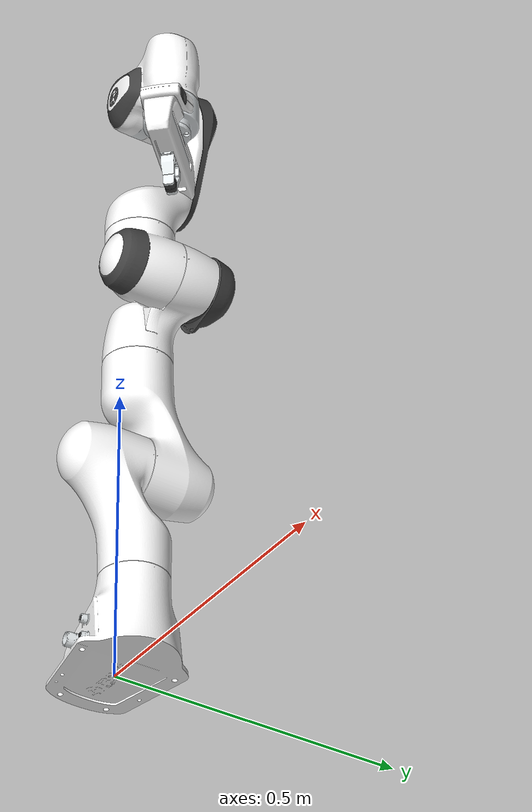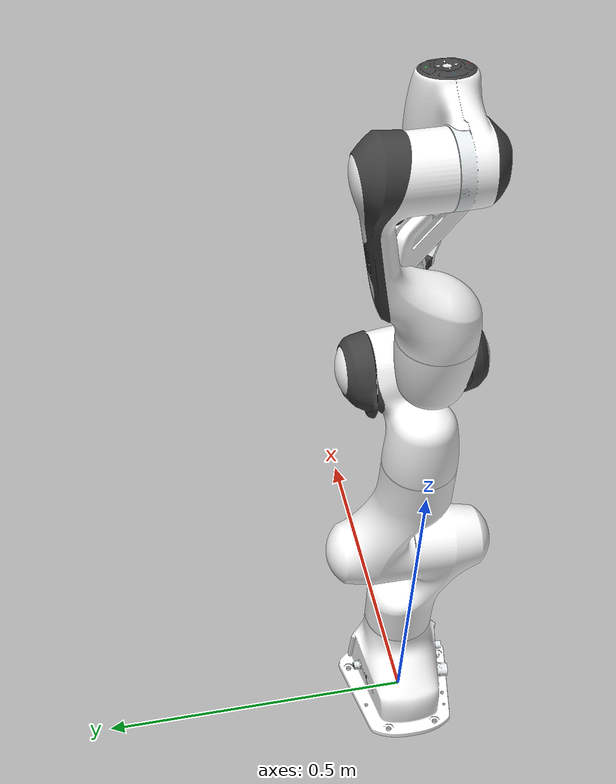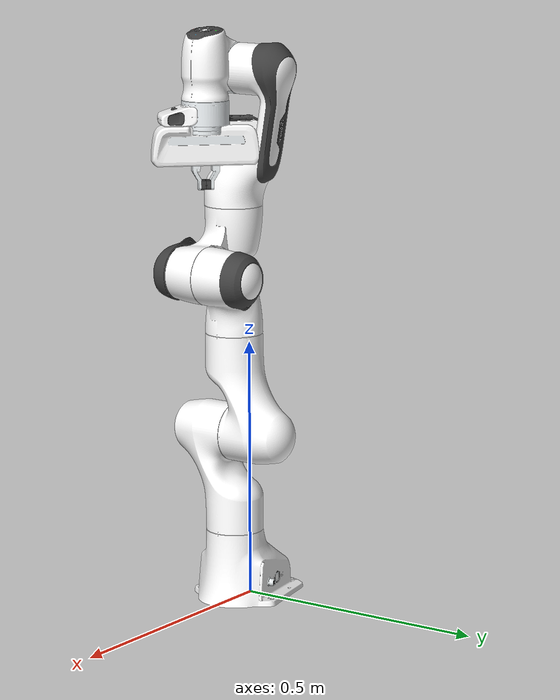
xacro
<?xml version="1.0"?>
<robot xmlns:xacro="http://www.ros.org/wiki/xacro" name="panda">

    <!-- 1. Include our newly cleaned Panda URDF -->
    <xacro:include filename="$(find my_panda_project)/urdf/clean_panda.urdf" />

    <!-- 2. Anchor the robot base to the Gazebo world so it never falls down -->
    <link name="world"/>
    <joint name="virtual_joint" type="fixed">
        <parent link="world"/>
        <child link="panda_link0"/>
        <origin xyz="0.05 0 0" rpy="0 0 0"/>
    </joint>

    <!-- 3. Define the Gazebo ros2_control hardware interface -->
    <ros2_control name="GazeboSimSystem" type="system">
        <hardware>
            <plugin>gz_ros2_control/GazeboSimSystem</plugin>
        </hardware>

        <!-- Macro to apply interfaces and specific initial positions to all joints -->
        <xacro:macro name="configure_joint" params="joint_name init_pos">
            <joint name="${joint_name}">
                <command_interface name="position"/>
                <state_interface name="position">
                    <param name="initial_value">${init_pos}</param>
                </state_interface>
                <state_interface name="velocity"/>
            </joint>
        </xacro:macro>

        <!-- Inject the safe "Ready/Home" pose joint angles -->
        <xacro:configure_joint joint_name="panda_joint1" init_pos="0.0" />
        <xacro:configure_joint joint_name="panda_joint2" init_pos="-0.785" />
        <xacro:configure_joint joint_name="panda_joint3" init_pos="0.0" />
        <xacro:configure_joint joint_name="panda_joint4" init_pos="-2.356" />
        <xacro:configure_joint joint_name="panda_joint5" init_pos="0.0" />
        <xacro:configure_joint joint_name="panda_joint6" init_pos="1.57" />
        <xacro:configure_joint joint_name="panda_joint7" init_pos="0.785" />

        <!-- The active finger gets the standard macro (with command interface) -->
        <xacro:configure_joint joint_name="panda_finger_joint1" init_pos="0.04" />

        <!-- The mimic finger ONLY gets state interfaces -->
        <joint name="panda_finger_joint2">
            <state_interface name="position">
                <param name="initial_value">0.04</param>
            </state_interface>
            <state_interface name="velocity"/>
        </joint>

    </ros2_control>

    <!-- 4. Attach the Gazebo ROS 2 Control Plugin -->
    <gazebo>
        <plugin filename="gz_ros2_control-system" name="gz_ros2_control::GazeboSimROS2ControlPlugin">
            <parameters>$(find my_panda_project)/config/ros2_controllers.yaml</parameters>
        </plugin>
    </gazebo>

</robot>

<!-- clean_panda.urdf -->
<robot name="panda">
    <link name="panda_link0">
        <visual>
            <geometry>
                <mesh filename="package://moveit_resources_panda_description/meshes/visual/link0.dae" />
            </geometry>
        </visual>
        <collision>
            <geometry>
                <mesh filename="package://moveit_resources_panda_description/meshes/collision/link0.stl" />
            </geometry>
        </collision>
    <inertial><mass value="2.0" /><origin xyz="0 0 0" rpy="0 0 0" /><inertia ixx="0.05" ixy="0" ixz="0" iyy="0.05" iyz="0" izz="0.05" /></inertial></link>
    <link name="panda_link1">
        <visual>
            <geometry>
                <mesh filename="package://moveit_resources_panda_description/meshes/visual/link1.dae" />
            </geometry>
        </visual>
        <collision>
            <geometry>
                <mesh filename="package://moveit_resources_panda_description/meshes/collision/link1.stl" />
            </geometry>
        </collision>
    <inertial><mass value="2.0" /><origin xyz="0 0 0" rpy="0 0 0" /><inertia ixx="0.05" ixy="0" ixz="0" iyy="0.05" iyz="0" izz="0.05" /></inertial></link>
    <joint name="panda_joint1" type="revolute">
        <safety_controller k_position="100.0" k_velocity="40.0" soft_lower_limit="-2.8973" soft_upper_limit="2.8973" />
        <origin rpy="0 0 0" xyz="0 0 0.333" />
        <parent link="panda_link0" />
        <child link="panda_link1" />
        <axis xyz="0 0 1" />
        <limit effort="87" lower="-2.9671" upper="2.9671" velocity="2.3925" />
    </joint>
    <link name="panda_link2">
        <visual>
            <geometry>
                <mesh filename="package://moveit_resources_panda_description/meshes/visual/link2.dae" />
            </geometry>
        </visual>
        <collision>
            <geometry>
                <mesh filename="package://moveit_resources_panda_description/meshes/collision/link2.stl" />
            </geometry>
        </collision>
    <inertial><mass value="2.0" /><origin xyz="0 0 0" rpy="0 0 0" /><inertia ixx="0.05" ixy="0" ixz="0" iyy="0.05" iyz="0" izz="0.05" /></inertial></link>
    <joint name="panda_joint2" type="revolute">
        <safety_controller k_position="100.0" k_velocity="40.0" soft_lower_limit="-1.7628" soft_upper_limit="1.7628" />
        <origin rpy="-1.57079632679 0 0" xyz="0 0 0" />
        <parent link="panda_link1" />
        <child link="panda_link2" />
        <axis xyz="0 0 1" />
        <limit effort="87" lower="-1.8326" upper="1.8326" velocity="2.3925" />
    </joint>
    <link name="panda_link3">
        <visual>
            <geometry>
                <mesh filename="package://moveit_resources_panda_description/meshes/visual/link3.dae" />
            </geometry>
        </visual>
        <collision>
            <geometry>
                <mesh filename="package://moveit_resources_panda_description/meshes/collision/link3.stl" />
            </geometry>
        </collision>
    <inertial><mass value="2.0" /><origin xyz="0 0 0" rpy="0 0 0" /><inertia ixx="0.05" ixy="0" ixz="0" iyy="0.05" iyz="0" izz="0.05" /></inertial></link>
    <joint name="panda_joint3" type="revolute">
        <safety_controller k_position="100.0" k_velocity="40.0" soft_lower_limit="-2.8973" soft_upper_limit="2.8973" />
        <origin rpy="1.57079632679 0 0" xyz="0 -0.316 0" />
        <parent link="panda_link2" />
        <child link="panda_link3" />
        <axis xyz="0 0 1" />
        <limit effort="87" lower="-2.9671" upper="2.9671" velocity="2.3925" />
    </joint>
    <link name="panda_link4">
        <visual>
            <geometry>
                <mesh filename="package://moveit_resources_panda_description/meshes/visual/link4.dae" />
            </geometry>
        </visual>
        <collision>
            <geometry>
                <mesh filename="package://moveit_resources_panda_description/meshes/collision/link4.stl" />
            </geometry>
        </collision>
    <inertial><mass value="2.0" /><origin xyz="0 0 0" rpy="0 0 0" /><inertia ixx="0.05" ixy="0" ixz="0" iyy="0.05" iyz="0" izz="0.05" /></inertial></link>
    <joint name="panda_joint4" type="revolute">
        <safety_controller k_position="100.0" k_velocity="40.0" soft_lower_limit="-3.0718" soft_upper_limit="0.0175" />
        <origin rpy="1.57079632679 0 0" xyz="0.0825 0 0" />
        <parent link="panda_link3" />
        <child link="panda_link4" />
        <axis xyz="0 0 1" />
        <limit effort="87" lower="-3.1416" upper="0.0873" velocity="2.3925" />
    </joint>
    <link name="panda_link5">
        <visual>
            <geometry>
                <mesh filename="package://moveit_resources_panda_description/meshes/visual/link5.dae" />
            </geometry>
        </visual>
        <collision>
            <geometry>
                <mesh filename="package://moveit_resources_panda_description/meshes/collision/link5.stl" />
            </geometry>
        </collision>
    <inertial><mass value="2.0" /><origin xyz="0 0 0" rpy="0 0 0" /><inertia ixx="0.05" ixy="0" ixz="0" iyy="0.05" iyz="0" izz="0.05" /></inertial></link>
    <joint name="panda_joint5" type="revolute">
        <safety_controller k_position="100.0" k_velocity="40.0" soft_lower_limit="-2.8973" soft_upper_limit="2.8973" />
        <origin rpy="-1.57079632679 0 0" xyz="-0.0825 0.384 0" />
        <parent link="panda_link4" />
        <child link="panda_link5" />
        <axis xyz="0 0 1" />
        <limit effort="12" lower="-2.9671" upper="2.9671" velocity="2.8710" />
    </joint>
    <link name="panda_link6">
        <visual>
            <geometry>
                <mesh filename="package://moveit_resources_panda_description/meshes/visual/link6.dae" />
            </geometry>
        </visual>
        <collision>
            <geometry>
                <mesh filename="package://moveit_resources_panda_description/meshes/collision/link6.stl" />
            </geometry>
        </collision>
    <inertial><mass value="2.0" /><origin xyz="0 0 0" rpy="0 0 0" /><inertia ixx="0.05" ixy="0" ixz="0" iyy="0.05" iyz="0" izz="0.05" /></inertial></link>
    <joint name="panda_joint6" type="revolute">
        <safety_controller k_position="100.0" k_velocity="40.0" soft_lower_limit="-0.0175" soft_upper_limit="3.7525" />
        <origin rpy="1.57079632679 0 0" xyz="0 0 0" />
        <parent link="panda_link5" />
        <child link="panda_link6" />
        <axis xyz="0 0 1" />
        <limit effort="12" lower="-0.0873" upper="3.8223" velocity="2.8710" />
    </joint>
    <link name="panda_link7">
        <visual>
            <geometry>
                <mesh filename="package://moveit_resources_panda_description/meshes/visual/link7.dae" />
            </geometry>
        </visual>
        <collision>
            <geometry>
                <mesh filename="package://moveit_resources_panda_description/meshes/collision/link7.stl" />
            </geometry>
        </collision>
    <inertial><mass value="2.0" /><origin xyz="0 0 0" rpy="0 0 0" /><inertia ixx="0.05" ixy="0" ixz="0" iyy="0.05" iyz="0" izz="0.05" /></inertial></link>
    <joint name="panda_joint7" type="revolute">
        <safety_controller k_position="100.0" k_velocity="40.0" soft_lower_limit="-2.8973" soft_upper_limit="2.8973" />
        <origin rpy="1.57079632679 0 0" xyz="0.088 0 0" />
        <parent link="panda_link6" />
        <child link="panda_link7" />
        <axis xyz="0 0 1" />
        <limit effort="12" lower="-2.9671" upper="2.9671" velocity="2.8710" />
    </joint>
    <link name="panda_link8"><inertial><mass value="2.0" /><origin xyz="0 0 0" rpy="0 0 0" /><inertia ixx="0.05" ixy="0" ixz="0" iyy="0.05" iyz="0" izz="0.05" /></inertial></link>
    <joint name="panda_joint8" type="fixed">
        <origin rpy="0 0 0" xyz="0 0 0.107" />
        <parent link="panda_link7" />
        <child link="panda_link8" />
        <axis xyz="0 0 0" />
    </joint>
    <joint name="panda_hand_joint" type="fixed">
        <parent link="panda_link8" />
        <child link="panda_hand" />
        <origin rpy="0 0 -0.785398163397" xyz="0 0 0" />
    </joint>
    <link name="panda_hand">
        <visual>
            <geometry>
                <mesh filename="package://moveit_resources_panda_description/meshes/visual/hand.dae" />
            </geometry>
        </visual>
        <collision>
            <geometry>
                <mesh filename="package://moveit_resources_panda_description/meshes/collision/hand.stl" />
            </geometry>
        </collision>
    <inertial><mass value="2.0" /><origin xyz="0 0 0" rpy="0 0 0" /><inertia ixx="0.05" ixy="0" ixz="0" iyy="0.05" iyz="0" izz="0.05" /></inertial></link>
    <link name="panda_leftfinger">
        <visual>
            <geometry>
                <mesh filename="package://moveit_resources_panda_description/meshes/visual/finger.dae" />
            </geometry>
        </visual>
        <collision>
            <geometry>
                <mesh filename="package://moveit_resources_panda_description/meshes/collision/finger.stl" />
            </geometry>
        </collision>
    <inertial><mass value="2.0" /><origin xyz="0 0 0" rpy="0 0 0" /><inertia ixx="0.05" ixy="0" ixz="0" iyy="0.05" iyz="0" izz="0.05" /></inertial></link>
    <link name="panda_rightfinger">
        <visual>
            <origin rpy="0 0 3.14159265359" xyz="0 0 0" />
            <geometry>
                <mesh filename="package://moveit_resources_panda_description/meshes/visual/finger.dae" />
            </geometry>
        </visual>
        <collision>
            <origin rpy="0 0 3.14159265359" xyz="0 0 0" />
            <geometry>
                <mesh filename="package://moveit_resources_panda_description/meshes/collision/finger.stl" />
            </geometry>
        </collision>
    <inertial><mass value="2.0" /><origin xyz="0 0 0" rpy="0 0 0" /><inertia ixx="0.05" ixy="0" ixz="0" iyy="0.05" iyz="0" izz="0.05" /></inertial></link>
    <joint name="panda_finger_joint1" type="prismatic">
        <parent link="panda_hand" />
        <child link="panda_leftfinger" />
        <origin rpy="0 0 0" xyz="0 0 0.0584" />
        <axis xyz="0 1 0" />
        <limit effort="20" lower="0.0" upper="0.04" velocity="0.2" />
    </joint>
    <joint name="panda_finger_joint2" type="prismatic">
        <parent link="panda_hand" />
        <child link="panda_rightfinger" />
        <origin rpy="0 0 0" xyz="0 0 0.0584" />
        <axis xyz="0 -1 0" />
        <limit effort="20" lower="0.0" upper="0.04" velocity="0.2" />
        <mimic joint="panda_finger_joint1" />
    </joint>
</robot>
